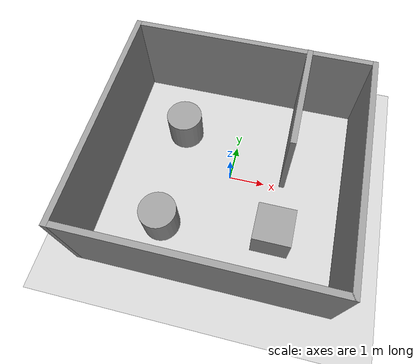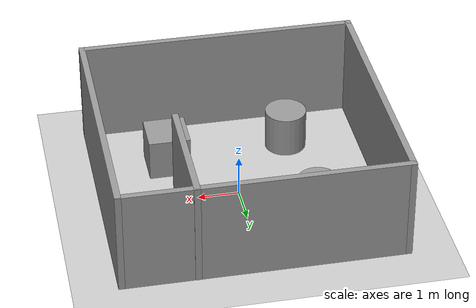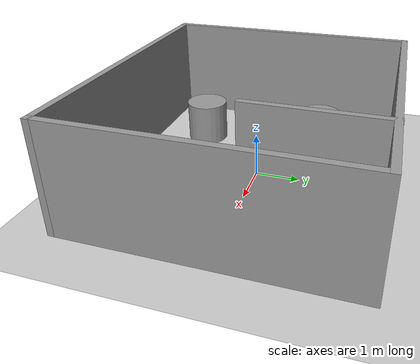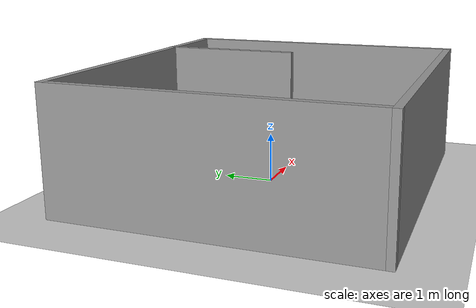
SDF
<sdf version="1.7">
 <world name="default">
  <light name="sun" type="directional">
   <pose>0 0 10 0 -0 0</pose>
   <diffuse>0.8 0.8 0.8 1</diffuse>
   <specular>0.2 0.2 0.2 1</specular>
   <attenuation>
    <range>1000</range>
    <constant>0.9</constant>
    <linear>0.01</linear>
    <quadratic>0.001</quadratic>
   </attenuation>
   <direction>-0.5 0.1 -0.9</direction>
   <spot><inner_angle>0</inner_angle><outer_angle>0</outer_angle><falloff>0</falloff></spot>
  </light>
  <model name="ground_plane">
   <static>1</static>
   <link name="link">
    <collision name="collision">
     <geometry><plane><normal>0 0 1</normal><size>100 100</size></plane></geometry>
     <surface><friction><ode><mu>100</mu><mu2>50</mu2></ode></friction></surface>
    </collision>
    <visual name="visual">
     <cast_shadows>0</cast_shadows>
     <geometry><plane><normal>0 0 1</normal><size>100 100</size></plane></geometry>
     <material>
      <script><uri>file://media/materials/scripts/gazebo.material</uri><name>Gazebo/Grey</name></script>
     </material>
    </visual>
   </link>
  </model>
  <gravity>0 0 -9.8</gravity>
  <magnetic_field>6e-06 2.3e-05 -4.2e-05</magnetic_field>
  <atmosphere type="adiabatic"/>
  <physics type="ode">
   <max_step_size>0.001</max_step_size>
   <real_time_factor>1</real_time_factor>
   <real_time_update_rate>1000</real_time_update_rate>
  </physics>
  <scene><ambient>0.4 0.4 0.4 1</ambient><background>0.7 0.7 0.7 1</background><shadows>1</shadows></scene>
  <audio><device>default</device></audio>
  <spherical_coordinates>
   <surface_model>EARTH_WGS84</surface_model>
   <latitude_deg>0</latitude_deg>
   <longitude_deg>0</longitude_deg>
   <elevation>0</elevation>
   <heading_deg>0</heading_deg>
  </spherical_coordinates>
  <model name="unit_cylinder">
   <pose>-1.64325 1.17602 0.499993 -3e-06 -3e-06 0</pose>
   <link name="link">
    <inertial>
     <mass>1</mass>
     <inertia><ixx>0.145833</ixx><ixy>0</ixy><ixz>0</ixz><iyy>0.145833</iyy><iyz>0</iyz><izz>0.125</izz></inertia>
    </inertial>
    <collision name="collision">
     <geometry><cylinder><radius>0.5</radius><length>1</length></cylinder></geometry>
    </collision>
    <visual name="visual">
     <geometry><cylinder><radius>0.5</radius><length>1</length></cylinder></geometry>
     <material>
      <script><name>Gazebo/Grey</name><uri>file://media/materials/scripts/gazebo.material</uri></script>
     </material>
    </visual>
   </link>
  </model>
  <model name="unit_cylinder_0">
   <pose>-1.50947 -1.7909 0.499997 3e-06 4e-06 -0</pose>
   <link name="link">
    <inertial>
     <mass>1</mass>
     <inertia><ixx>0.145833</ixx><ixy>0</ixy><ixz>0</ixz><iyy>0.145833</iyy><iyz>0</iyz><izz>0.125</izz></inertia>
    </inertial>
    <collision name="collision">
     <geometry><cylinder><radius>0.5</radius><length>1</length></cylinder></geometry>
    </collision>
    <visual name="visual">
     <geometry><cylinder><radius>0.5</radius><length>1</length></cylinder></geometry>
     <material>
      <script><name>Gazebo/Grey</name><uri>file://media/materials/scripts/gazebo.material</uri></script>
     </material>
    </visual>
   </link>
  </model>
  <model name="unit_box">
   <pose>1.4892 -1.47568 0.499995 -1e-05 -0 0</pose>
   <link name="link">
    <inertial>
     <mass>1</mass>
     <inertia>
      <ixx>0.166667</ixx>
      <ixy>0</ixy>
      <ixz>0</ixz>
      <iyy>0.166667</iyy>
      <iyz>0</iyz>
      <izz>0.166667</izz>
     </inertia>
    </inertial>
    <collision name="collision"><geometry><box><size>1 1 1</size></box></geometry></collision>
    <visual name="visual">
     <geometry><box><size>1 1 1</size></box></geometry>
     <material>
      <script><name>Gazebo/Grey</name><uri>file://media/materials/scripts/gazebo.material</uri></script>
     </material>
    </visual>
   </link>
  </model>
  <model name="test.sdf">
   <pose>-0.050406 -0.084893 0 0 -0 0</pose>
   <link name="Wall_10">
    <collision name="Wall_10_Collision">
     <geometry><box><size>3 0.15 2.5</size></box></geometry>
     <pose>0 0 1.25 0 -0 0</pose>
    </collision>
    <visual name="Wall_10_Visual">
     <pose>0 0 1.25 0 -0 0</pose>
     <geometry><box><size>3 0.15 2.5</size></box></geometry>
     <material>
      <script><uri>file://media/materials/scripts/gazebo.material</uri><name>Gazebo/Grey</name></script>
      <ambient>1 1 1 1</ambient>
     </material>
     <meta><layer>0</layer></meta>
    </visual>
    <pose>1.55938 1.62874 0 0 -0 -1.5708</pose>
   </link>
   <link name="Wall_2">
    <collision name="Wall_2_Collision">
     <geometry><box><size>6.25 0.15 2.5</size></box></geometry>
     <pose>0 0 1.25 0 -0 0</pose>
    </collision>
    <visual name="Wall_2_Visual">
     <pose>0 0 1.25 0 -0 0</pose>
     <geometry><box><size>6.25 0.15 2.5</size></box></geometry>
     <material>
      <script><uri>file://media/materials/scripts/gazebo.material</uri><name>Gazebo/Grey</name></script>
      <ambient>1 1 1 1</ambient>
     </material>
     <meta><layer>0</layer></meta>
    </visual>
    <pose>-3.3 -0.003736 0 0 -0 1.5708</pose>
   </link>
   <link name="Wall_4">
    <collision name="Wall_4_Collision">
     <geometry><box><size>6.75 0.15 2.5</size></box></geometry>
     <pose>0 0 1.25 0 -0 0</pose>
    </collision>
    <visual name="Wall_4_Visual">
     <pose>0 0 1.25 0 -0 0</pose>
     <geometry><box><size>6.75 0.15 2.5</size></box></geometry>
     <material>
      <script><uri>file://media/materials/scripts/gazebo.material</uri><name>Gazebo/Grey</name></script>
      <ambient>1 1 1 1</ambient>
     </material>
     <meta><layer>0</layer></meta>
    </visual>
    <pose>0 3.04626 0 0 -0 0</pose>
   </link>
   <link name="Wall_5">
    <collision name="Wall_5_Collision">
     <geometry><box><size>6.25 0.15 2.5</size></box></geometry>
     <pose>0 0 1.25 0 -0 0</pose>
    </collision>
    <visual name="Wall_5_Visual">
     <pose>0 0 1.25 0 -0 0</pose>
     <geometry><box><size>6.25 0.15 2.5</size></box></geometry>
     <material>
      <script><uri>file://media/materials/scripts/gazebo.material</uri><name>Gazebo/Grey</name></script>
      <ambient>1 1 1 1</ambient>
     </material>
     <meta><layer>0</layer></meta>
    </visual>
    <pose>3.3 -0.003736 0 0 -0 -1.5708</pose>
   </link>
   <link name="Wall_6">
    <collision name="Wall_6_Collision">
     <geometry><box><size>6.75 0.15 2.5</size></box></geometry>
     <pose>0 0 1.25 0 -0 0</pose>
    </collision>
    <visual name="Wall_6_Visual">
     <pose>0 0 1.25 0 -0 0</pose>
     <geometry><box><size>6.75 0.15 2.5</size></box></geometry>
     <material>
      <script><uri>file://media/materials/scripts/gazebo.material</uri><name>Gazebo/Grey</name></script>
      <ambient>1 1 1 1</ambient>
     </material>
     <meta><layer>0</layer></meta>
    </visual>
    <pose>0 -3.05374 0 0 -0 3.14159</pose>
   </link>
   <static>1</static>
  </model>
 </world>
</sdf>
